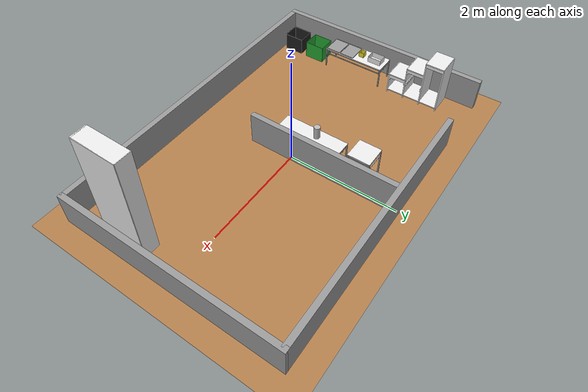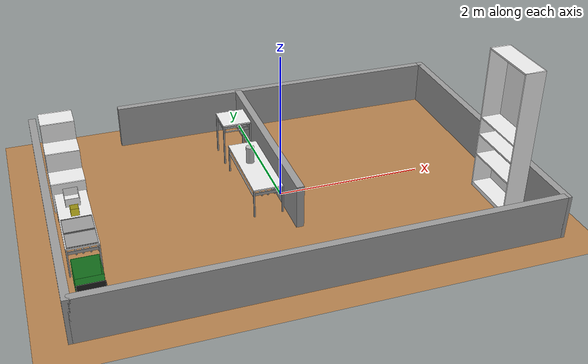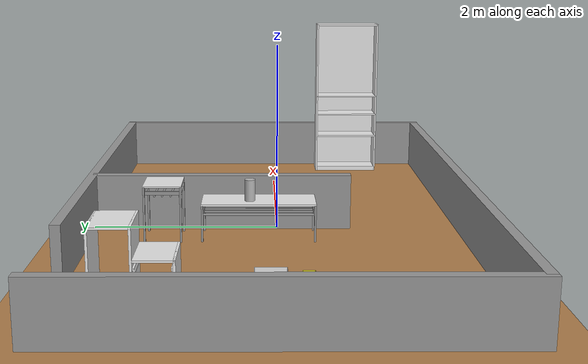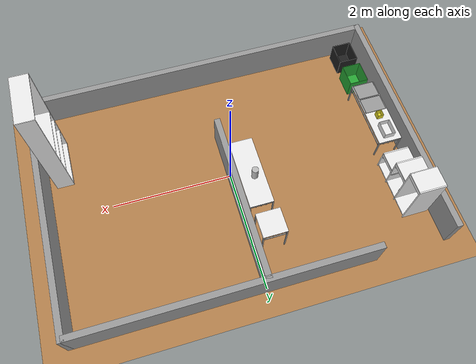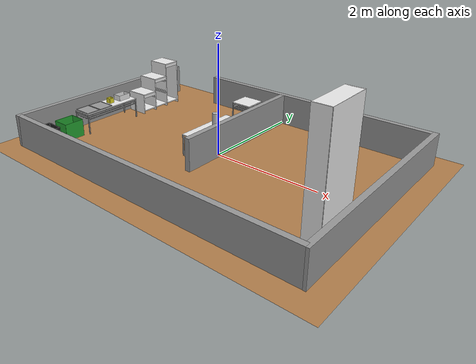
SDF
<sdf version="1.7">
 <world name="default">
  <light name="sun" type="directional">
   <pose>0 0 10 0 -0 0</pose>
   <diffuse>0.8 0.8 0.8 1</diffuse>
   <specular>0.2 0.2 0.2 1</specular>
   <attenuation>
    <range>1000</range>
    <constant>0.9</constant>
    <linear>0.01</linear>
    <quadratic>0.001</quadratic>
   </attenuation>
   <direction>-0.5 0.1 -0.9</direction>
   <spot><inner_angle>0</inner_angle><outer_angle>0</outer_angle><falloff>0</falloff></spot>
  </light>
  <gravity>0 0 -9.8</gravity>
  <physics type="ode">
   <max_step_size>0.001</max_step_size>
   <real_time_factor>1</real_time_factor>
   <real_time_update_rate>1000</real_time_update_rate>
  </physics>
  <scene><ambient>0.4 0.4 0.4 1</ambient><background>0.7 0.7 0.7 1</background><shadows>1</shadows></scene>
  <model name="wrc_ground_plane">
   <static>1</static>
   <link name="link">
    <collision name="collision">
     <geometry><plane><normal>0 0 1</normal><size>10 10</size></plane></geometry>
     <surface>
      <contact><collide_bitmask>65535</collide_bitmask></contact>
      <friction><ode><mu>100</mu><mu2>50</mu2></ode></friction>
     </surface>
    </collision>
    <visual name="visual">
     <cast_shadows>0</cast_shadows>
     <geometry><plane><normal>0 0 1</normal><size>10 10</size></plane></geometry>
     <material>
      <script><uri>model://wrc_ground_plane/materials/wood.material</uri><name>WRS/WoodFloor</name></script>
     </material>
    </visual>
   </link>
  </model>
  <model name="wrc_frame">
   <static>1</static>
   <link name="link">
    <inertial><mass>1</mass></inertial>
    <collision name="wall_back">
     <pose>0.6 2 0.3 0 -0 0</pose>
     <geometry><box><size>4.8 0.1 0.6</size></box></geometry>
    </collision>
    <visual name="wall_back_v">
     <pose>0.6 2 0.3 0 -0 0</pose>
     <geometry><box><size>4.8 0.1 0.6</size></box></geometry>
     <material>
      <script><uri>file://media/materials/scripts/gazebo.material</uri><name>Gazebo/Gray</name></script>
     </material>
    </visual>
    <collision name="wall_front">
     <pose>0 -2 0.3 0 -0 0</pose>
     <geometry><box><size>6 0.1 0.6</size></box></geometry>
    </collision>
    <visual name="wall_front_v">
     <pose>0 -2 0.3 0 -0 0</pose>
     <geometry><box><size>6 0.1 0.6</size></box></geometry>
     <material>
      <script><uri>file://media/materials/scripts/gazebo.material</uri><name>Gazebo/Gray</name></script>
     </material>
    </visual>
    <collision name="wall_left">
     <pose>-3 0 0.3 0 -0 0</pose>
     <geometry><box><size>0.1 4.1 0.6</size></box></geometry>
    </collision>
    <visual name="wall_left_v">
     <pose>-3 0 0.3 0 -0 0</pose>
     <geometry><box><size>0.1 4.1 0.6</size></box></geometry>
     <material>
      <script><uri>file://media/materials/scripts/gazebo.material</uri><name>Gazebo/Gray</name></script>
     </material>
    </visual>
    <collision name="wall_right">
     <pose>3 0 0.3 0 -0 0</pose>
     <geometry><box><size>0.1 4.1 0.6</size></box></geometry>
    </collision>
    <visual name="wall_right_v">
     <pose>3 0 0.3 0 -0 0</pose>
     <geometry><box><size>0.1 4.1 0.6</size></box></geometry>
     <material>
      <script><uri>file://media/materials/scripts/gazebo.material</uri><name>Gazebo/Gray</name></script>
     </material>
    </visual>
    <collision name="wall_center">
     <pose>0 0.6 0.3 0 -0 0</pose>
     <geometry><box><size>0.1 2.8 0.6</size></box></geometry>
    </collision>
    <visual name="wall_center_v">
     <pose>0 0.6 0.3 0 -0 0</pose>
     <geometry><box><size>0.1 2.8 0.6</size></box></geometry>
     <material>
      <script><uri>file://media/materials/scripts/gazebo.material</uri><name>Gazebo/Gray</name></script>
     </material>
    </visual>
   </link>
  </model>
  <model name="wrc_bookshelf">
   <static>1</static>
   <link name="link">
    <inertial><mass>1</mass></inertial>
    <collision name="back">
     <pose>0 0.005 1.01 0 -0 0</pose>
     <geometry><box><size>0.8 0.01 2.02</size></box></geometry>
    </collision>
    <visual name="back_v">
     <pose>0 0.14 1.01 0 -0 0</pose>
     <geometry><box><size>0.8 0.01 2.02</size></box></geometry>
     <material>
      <script><uri>file://media/materials/scripts/gazebo.material</uri><name>Gazebo/White</name></script>
     </material>
    </visual>
    <collision name="left_side">
     <pose>0.4 0 1.01 0 -0 0</pose>
     <geometry><box><size>0.02 0.28 2.02</size></box></geometry>
    </collision>
    <visual name="left_side_v">
     <pose>0.4 0 1.01 0 -0 0</pose>
     <geometry><box><size>0.02 0.28 2.02</size></box></geometry>
     <material>
      <script><uri>file://media/materials/scripts/gazebo.material</uri><name>Gazebo/White</name></script>
     </material>
    </visual>
    <collision name="right_side">
     <pose>-0.4 0 1.01 0 -0 0</pose>
     <geometry><box><size>0.02 0.28 2.02</size></box></geometry>
    </collision>
    <visual name="right_side_v">
     <pose>-0.4 0 1.01 0 -0 0</pose>
     <geometry><box><size>0.02 0.28 2.02</size></box></geometry>
     <material>
      <script><uri>file://media/materials/scripts/gazebo.material</uri><name>Gazebo/White</name></script>
     </material>
    </visual>
    <collision name="bottom">
     <pose>0 0 0.03 0 -0 0</pose>
     <geometry><box><size>0.8 0.28 0.06</size></box></geometry>
    </collision>
    <visual name="bottom_v">
     <pose>0 0 0.03 0 -0 0</pose>
     <geometry><box><size>0.8 0.28 0.06</size></box></geometry>
     <material>
      <script><uri>file://media/materials/scripts/gazebo.material</uri><name>Gazebo/White</name></script>
     </material>
    </visual>
    <collision name="top">
     <pose>0 0 2.01 0 -0 0</pose>
     <geometry><box><size>0.8 0.28 0.02</size></box></geometry>
    </collision>
    <visual name="top_v">
     <pose>0 0 2.01 0 -0 0</pose>
     <geometry><box><size>0.8 0.28 0.02</size></box></geometry>
     <material>
      <script><uri>file://media/materials/scripts/gazebo.material</uri><name>Gazebo/White</name></script>
     </material>
    </visual>
    <collision name="slit1">
     <pose>0 0 0.49 0 -0 0</pose>
     <geometry><box><size>0.8 0.28 0.02</size></box></geometry>
    </collision>
    <visual name="slit1_v">
     <pose>0 0 0.49 0 -0 0</pose>
     <geometry><box><size>0.8 0.28 0.02</size></box></geometry>
     <material>
      <script><uri>file://media/materials/scripts/gazebo.material</uri><name>Gazebo/White</name></script>
     </material>
    </visual>
    <collision name="slit2">
     <pose>0 0 0.79 0 -0 0</pose>
     <geometry><box><size>0.8 0.28 0.02</size></box></geometry>
    </collision>
    <visual name="slit2_v">
     <pose>0 0 0.79 0 -0 0</pose>
     <geometry><box><size>0.8 0.28 0.02</size></box></geometry>
     <material>
      <script><uri>file://media/materials/scripts/gazebo.material</uri><name>Gazebo/White</name></script>
     </material>
    </visual>
    <collision name="slit3">
     <pose>0 0 1.04 0 -0 0</pose>
     <geometry><box><size>0.8 0.28 0.02</size></box></geometry>
    </collision>
    <visual name="slit3_v">
     <pose>0 0 1.04 0 -0 0</pose>
     <geometry><box><size>0.8 0.28 0.02</size></box></geometry>
     <material>
      <script><uri>file://media/materials/scripts/gazebo.material</uri><name>Gazebo/White</name></script>
     </material>
    </visual>
   </link>
   <pose>2.69998 -0.999774 0 0 0 -1.57</pose>
  </model>
  <model name="wrc_bin_black">
   <static>1</static>
   <link name="link">
    <inertial><mass>1</mass></inertial>
    <collision name="bottom">
     <pose>0 0 0.002 0 -0 0</pose>
     <geometry><box><size>0.33 0.38 0.004</size></box></geometry>
    </collision>
    <visual name="bottom_v">
     <pose>0 0 0.002 0 -0 0</pose>
     <geometry><box><size>0.33 0.38 0.004</size></box></geometry>
     <material>
      <script><uri>file://media/materials/scripts/gazebo.material</uri><name>Gazebo/Black</name></script>
     </material>
    </visual>
    <collision name="front">
     <pose>0 0.19 0.165 0 -0 0</pose>
     <geometry><box><size>0.33 0.004 0.33</size></box></geometry>
    </collision>
    <visual name="front_v">
     <pose>0 0.19 0.165 0 -0 0</pose>
     <geometry><box><size>0.33 0.004 0.33</size></box></geometry>
     <material>
      <script><uri>file://media/materials/scripts/gazebo.material</uri><name>Gazebo/Black</name></script>
     </material>
    </visual>
    <collision name="back">
     <pose>0 -0.19 0.165 0 -0 0</pose>
     <geometry><box><size>0.33 0.004 0.33</size></box></geometry>
    </collision>
    <visual name="back_v">
     <pose>0 -0.19 0.165 0 -0 0</pose>
     <geometry><box><size>0.33 0.004 0.33</size></box></geometry>
     <material>
      <script><uri>file://media/materials/scripts/gazebo.material</uri><name>Gazebo/Black</name></script>
     </material>
    </visual>
    <collision name="left">
     <pose>0.165 0 0.165 0 -0 0</pose>
     <geometry><box><size>0.004 0.38 0.33</size></box></geometry>
    </collision>
    <visual name="left_v">
     <pose>0.165 0 0.165 0 -0 0</pose>
     <geometry><box><size>0.004 0.38 0.33</size></box></geometry>
     <material>
      <script><uri>file://media/materials/scripts/gazebo.material</uri><name>Gazebo/Black</name></script>
     </material>
    </visual>
    <collision name="right">
     <pose>-0.165 0 0.165 0 -0 0</pose>
     <geometry><box><size>0.004 0.38 0.33</size></box></geometry>
    </collision>
    <visual name="right_v">
     <pose>-0.165 0 0.165 0 -0 0</pose>
     <geometry><box><size>0.004 0.38 0.33</size></box></geometry>
     <material>
      <script><uri>file://media/materials/scripts/gazebo.material</uri><name>Gazebo/Black</name></script>
     </material>
    </visual>
   </link>
   <pose>-2.7 -1.7 0 0 -0 0</pose>
  </model>
  <model name="wrc_bin_green">
   <static>1</static>
   <link name="link">
    <inertial><mass>1</mass></inertial>
    <collision name="bottom">
     <pose>0 0 0.002 0 -0 0</pose>
     <geometry><box><size>0.33 0.38 0.004</size></box></geometry>
    </collision>
    <visual name="bottom_v">
     <pose>0 0 0.002 0 -0 0</pose>
     <geometry><box><size>0.33 0.38 0.004</size></box></geometry>
     <material>
      <script><uri>file://media/materials/scripts/gazebo.material</uri><name>Gazebo/Green</name></script>
     </material>
    </visual>
    <collision name="front">
     <pose>0 0.19 0.165 0 -0 0</pose>
     <geometry><box><size>0.33 0.004 0.33</size></box></geometry>
    </collision>
    <visual name="front_v">
     <pose>0 0.19 0.165 0 -0 0</pose>
     <geometry><box><size>0.33 0.004 0.33</size></box></geometry>
     <material>
      <script><uri>file://media/materials/scripts/gazebo.material</uri><name>Gazebo/Green</name></script>
     </material>
    </visual>
    <collision name="back">
     <pose>0 -0.19 0.165 0 -0 0</pose>
     <geometry><box><size>0.33 0.004 0.33</size></box></geometry>
    </collision>
    <visual name="back_v">
     <pose>0 -0.19 0.165 0 -0 0</pose>
     <geometry><box><size>0.33 0.004 0.33</size></box></geometry>
     <material>
      <script><uri>file://media/materials/scripts/gazebo.material</uri><name>Gazebo/Green</name></script>
     </material>
    </visual>
    <collision name="left">
     <pose>0.165 0 0.165 0 -0 0</pose>
     <geometry><box><size>0.004 0.38 0.33</size></box></geometry>
    </collision>
    <visual name="left_v">
     <pose>0.165 0 0.165 0 -0 0</pose>
     <geometry><box><size>0.004 0.38 0.33</size></box></geometry>
     <material>
      <script><uri>file://media/materials/scripts/gazebo.material</uri><name>Gazebo/Green</name></script>
     </material>
    </visual>
    <collision name="right">
     <pose>-0.165 0 0.165 0 -0 0</pose>
     <geometry><box><size>0.004 0.38 0.33</size></box></geometry>
    </collision>
    <visual name="right_v">
     <pose>-0.165 0 0.165 0 -0 0</pose>
     <geometry><box><size>0.004 0.38 0.33</size></box></geometry>
     <material>
      <script><uri>file://media/materials/scripts/gazebo.material</uri><name>Gazebo/Green</name></script>
     </material>
    </visual>
   </link>
   <pose>-2.7 -1.2 0 0 -0 0</pose>
  </model>
  <model name="wrc_stair_like_drawer">
   <static>1</static>
   <link name="link">
    <inertial><mass>1</mass></inertial>
    <collision name="slit1">
     <pose>0 -0.495 0.21 0 -0 0</pose>
     <geometry><box><size>0.44 0.02 0.42</size></box></geometry>
    </collision>
    <visual name="slit1_v">
     <pose>0 -0.495 0.21 0 -0 0</pose>
     <geometry><box><size>0.44 0.02 0.42</size></box></geometry>
     <material>
      <script><uri>file://media/materials/scripts/gazebo.material</uri><name>Gazebo/White</name></script>
     </material>
    </visual>
    <collision name="holder_slit1_1_left_low">
     <pose>0 -0.48 0.3 0 -0 0</pose>
     <geometry><box><size>0.42 0.02 0.02</size></box></geometry>
    </collision>
    <visual name="holder_slit1_1_left_low_v">
     <pose>0 -0.48 0.3 0 -0 0</pose>
     <geometry><box><size>0.42 0.02 0.02</size></box></geometry>
     <material>
      <script><uri>file://media/materials/scripts/gazebo.material</uri><name>Gazebo/White</name></script>
     </material>
    </visual>
    <collision name="holder_slit1_1_left_high">
     <pose>0 -0.48 0.34 0 -0 0</pose>
     <geometry><box><size>0.42 0.02 0.02</size></box></geometry>
    </collision>
    <visual name="holder_slit1_1_left_high_v">
     <pose>0 -0.48 0.34 0 -0 0</pose>
     <geometry><box><size>0.42 0.02 0.02</size></box></geometry>
     <material>
      <script><uri>file://media/materials/scripts/gazebo.material</uri><name>Gazebo/White</name></script>
     </material>
    </visual>
    <collision name="holder_slit1_1_right_low">
     <pose>0 -0.18 0.3 0 -0 0</pose>
     <geometry><box><size>0.42 0.02 0.02</size></box></geometry>
    </collision>
    <visual name="holder_slit1_1_right_low_v">
     <pose>0 -0.18 0.3 0 -0 0</pose>
     <geometry><box><size>0.42 0.02 0.02</size></box></geometry>
     <material>
      <script><uri>file://media/materials/scripts/gazebo.material</uri><name>Gazebo/White</name></script>
     </material>
    </visual>
    <collision name="holder_slit1_1_right_high">
     <pose>0 -0.18 0.34 0 -0 0</pose>
     <geometry><box><size>0.42 0.02 0.02</size></box></geometry>
    </collision>
    <visual name="holder_slit1_1_right_high_v">
     <pose>0 -0.18 0.34 0 -0 0</pose>
     <geometry><box><size>0.42 0.02 0.02</size></box></geometry>
     <material>
      <script><uri>file://media/materials/scripts/gazebo.material</uri><name>Gazebo/White</name></script>
     </material>
    </visual>
    <collision name="slit2">
     <pose>0 -0.165 0.34 0 -0 0</pose>
     <geometry><box><size>0.44 0.02 0.68</size></box></geometry>
    </collision>
    <visual name="slit2_v">
     <pose>0 -0.165 0.34 0 -0 0</pose>
     <geometry><box><size>0.44 0.02 0.68</size></box></geometry>
     <material>
      <script><uri>file://media/materials/scripts/gazebo.material</uri><name>Gazebo/White</name></script>
     </material>
    </visual>
    <collision name="holder_slit2_1_left_low">
     <pose>0 -0.15 0.3 0 -0 0</pose>
     <geometry><box><size>0.42 0.02 0.02</size></box></geometry>
    </collision>
    <visual name="holder_slit2_1_left_low_v">
     <pose>0 -0.15 0.3 0 -0 0</pose>
     <geometry><box><size>0.42 0.02 0.02</size></box></geometry>
     <material>
      <script><uri>file://media/materials/scripts/gazebo.material</uri><name>Gazebo/White</name></script>
     </material>
    </visual>
    <collision name="holder_slit2_1_left_high">
     <pose>0 -0.15 0.34 0 -0 0</pose>
     <geometry><box><size>0.42 0.02 0.02</size></box></geometry>
    </collision>
    <visual name="holder_slit2_1_left_high_v">
     <pose>0 -0.15 0.34 0 -0 0</pose>
     <geometry><box><size>0.42 0.02 0.02</size></box></geometry>
     <material>
      <script><uri>file://media/materials/scripts/gazebo.material</uri><name>Gazebo/White</name></script>
     </material>
    </visual>
    <collision name="holder_slit2_1_right_low">
     <pose>0 0.15 0.3 0 -0 0</pose>
     <geometry><box><size>0.42 0.02 0.02</size></box></geometry>
    </collision>
    <visual name="holder_slit2_1_right_low_v">
     <pose>0 0.15 0.3 0 -0 0</pose>
     <geometry><box><size>0.42 0.02 0.02</size></box></geometry>
     <material>
      <script><uri>file://media/materials/scripts/gazebo.material</uri><name>Gazebo/White</name></script>
     </material>
    </visual>
    <collision name="holder_slit2_1_right_high">
     <pose>0 0.15 0.34 0 -0 0</pose>
     <geometry><box><size>0.42 0.02 0.02</size></box></geometry>
    </collision>
    <visual name="holder_slit2_1_right_high_v">
     <pose>0 0.15 0.34 0 -0 0</pose>
     <geometry><box><size>0.42 0.02 0.02</size></box></geometry>
     <material>
      <script><uri>file://media/materials/scripts/gazebo.material</uri><name>Gazebo/White</name></script>
     </material>
    </visual>
    <collision name="holder_slit2_2_left_low">
     <pose>0 -0.15 0.56 0 -0 0</pose>
     <geometry><box><size>0.42 0.02 0.02</size></box></geometry>
    </collision>
    <visual name="holder_slit2_2_left_low_v">
     <pose>0 -0.15 0.56 0 -0 0</pose>
     <geometry><box><size>0.42 0.02 0.02</size></box></geometry>
     <material>
      <script><uri>file://media/materials/scripts/gazebo.material</uri><name>Gazebo/White</name></script>
     </material>
    </visual>
    <collision name="holder_slit2_2_left_high">
     <pose>0 -0.15 0.6 0 -0 0</pose>
     <geometry><box><size>0.42 0.02 0.02</size></box></geometry>
    </collision>
    <visual name="holder_slit2_2_left_high_v">
     <pose>0 -0.15 0.6 0 -0 0</pose>
     <geometry><box><size>0.42 0.02 0.02</size></box></geometry>
     <material>
      <script><uri>file://media/materials/scripts/gazebo.material</uri><name>Gazebo/White</name></script>
     </material>
    </visual>
    <collision name="holder_slit2_2_right_low">
     <pose>0 0.15 0.56 0 -0 0</pose>
     <geometry><box><size>0.42 0.02 0.02</size></box></geometry>
    </collision>
    <visual name="holder_slit2_2_right_low_v">
     <pose>0 0.15 0.56 0 -0 0</pose>
     <geometry><box><size>0.42 0.02 0.02</size></box></geometry>
     <material>
      <script><uri>file://media/materials/scripts/gazebo.material</uri><name>Gazebo/White</name></script>
     </material>
    </visual>
    <collision name="holder_slit2_2_right_high">
     <pose>0 0.15 0.6 0 -0 0</pose>
     <geometry><box><size>0.42 0.02 0.02</size></box></geometry>
    </collision>
    <visual name="holder_slit2_2_right_high_v">
     <pose>0 0.15 0.6 0 -0 0</pose>
     <geometry><box><size>0.42 0.02 0.02</size></box></geometry>
     <material>
      <script><uri>file://media/materials/scripts/gazebo.material</uri><name>Gazebo/White</name></script>
     </material>
    </visual>
    <collision name="slit3">
     <pose>0 0.165 0.47 0 -0 0</pose>
     <geometry><box><size>0.44 0.02 0.94</size></box></geometry>
    </collision>
    <visual name="slit3_v">
     <pose>0 0.165 0.47 0 -0 0</pose>
     <geometry><box><size>0.44 0.02 0.94</size></box></geometry>
     <material>
      <script><uri>file://media/materials/scripts/gazebo.material</uri><name>Gazebo/White</name></script>
     </material>
    </visual>
    <collision name="slit4">
     <pose>0 0.495 0.47 0 -0 0</pose>
     <geometry><box><size>0.44 0.02 0.94</size></box></geometry>
    </collision>
    <visual name="slit4_v">
     <pose>0 0.495 0.47 0 -0 0</pose>
     <geometry><box><size>0.44 0.02 0.94</size></box></geometry>
     <material>
      <script><uri>file://media/materials/scripts/gazebo.material</uri><name>Gazebo/White</name></script>
     </material>
    </visual>
    <collision name="top1">
     <pose>0 -0.33 0.41 0 -0 0</pose>
     <geometry><box><size>0.44 0.33 0.02</size></box></geometry>
    </collision>
    <visual name="top1_v">
     <pose>0 -0.33 0.41 0 -0 0</pose>
     <geometry><box><size>0.44 0.33 0.02</size></box></geometry>
     <material>
      <script><uri>file://media/materials/scripts/gazebo.material</uri><name>Gazebo/White</name></script>
     </material>
    </visual>
    <collision name="top1_front">
     <pose>0.21 -0.33 0.37 0 -0 0</pose>
     <geometry><box><size>0.02 0.33 0.06</size></box></geometry>
    </collision>
    <visual name="top1_front_v">
     <pose>0.21 -0.33 0.37 0 -0 0</pose>
     <geometry><box><size>0.02 0.33 0.06</size></box></geometry>
     <material>
      <script><uri>file://media/materials/scripts/gazebo.material</uri><name>Gazebo/White</name></script>
     </material>
    </visual>
    <collision name="top2">
     <pose>0 0 0.67 0 -0 0</pose>
     <geometry><box><size>0.44 0.33 0.02</size></box></geometry>
    </collision>
    <visual name="top2_v">
     <pose>0 0 0.67 0 -0 0</pose>
     <geometry><box><size>0.44 0.33 0.02</size></box></geometry>
     <material>
      <script><uri>file://media/materials/scripts/gazebo.material</uri><name>Gazebo/White</name></script>
     </material>
    </visual>
    <collision name="top2_front">
     <pose>0.21 0 0.63 0 -0 0</pose>
     <geometry><box><size>0.02 0.33 0.06</size></box></geometry>
    </collision>
    <visual name="top2_front_v">
     <pose>0.21 0 0.63 0 -0 0</pose>
     <geometry><box><size>0.02 0.33 0.06</size></box></geometry>
     <material>
      <script><uri>file://media/materials/scripts/gazebo.material</uri><name>Gazebo/White</name></script>
     </material>
    </visual>
    <collision name="top3">
     <pose>0 0.33 0.93 0 -0 0</pose>
     <geometry><box><size>0.44 0.33 0.02</size></box></geometry>
    </collision>
    <visual name="top3_v">
     <pose>0 0.33 0.93 0 -0 0</pose>
     <geometry><box><size>0.44 0.33 0.02</size></box></geometry>
     <material>
      <script><uri>file://media/materials/scripts/gazebo.material</uri><name>Gazebo/White</name></script>
     </material>
    </visual>
    <collision name="top3_front">
     <pose>0.21 0.33 0.89 0 -0 0</pose>
     <geometry><box><size>0.02 0.33 0.06</size></box></geometry>
    </collision>
    <visual name="top3_front_v">
     <pose>0.21 0.33 0.89 0 -0 0</pose>
     <geometry><box><size>0.02 0.33 0.06</size></box></geometry>
     <material>
      <script><uri>file://media/materials/scripts/gazebo.material</uri><name>Gazebo/White</name></script>
     </material>
    </visual>
    <collision name="bottom">
     <pose>0 0 0.06 0 -0 0</pose>
     <geometry><box><size>0.44 0.99 0.02</size></box></geometry>
    </collision>
    <visual name="bottom_v">
     <pose>0 0 0.06 0 -0 0</pose>
     <geometry><box><size>0.44 0.99 0.02</size></box></geometry>
     <material>
      <script><uri>file://media/materials/scripts/gazebo.material</uri><name>Gazebo/White</name></script>
     </material>
    </visual>
   </link>
   <pose>-2.7 1 0 0 -0 0</pose>
  </model>
  <model name="wrc_tall_table">
   <static>1</static>
   <link name="link">
    <inertial><mass>1</mass></inertial>
    <collision name="top">
     <pose>0 0 0.59 0 -0 0</pose>
     <geometry><box><size>0.4 0.4 0.02</size></box></geometry>
    </collision>
    <visual name="top_v">
     <pose>0 0 0.59 0 -0 0</pose>
     <geometry><box><size>0.4 0.4 0.02</size></box></geometry>
     <material>
      <script><uri>file://media/materials/scripts/gazebo.material</uri><name>Gazebo/White</name></script>
     </material>
    </visual>
    <collision name="leg1">
     <pose>0.19 0.19 0.285 0 -0 0</pose>
     <geometry><box><size>0.02 0.02 0.6</size></box></geometry>
    </collision>
    <visual name="leg1_v">
     <pose>0.19 0.19 0.285 0 -0 0</pose>
     <geometry><box><size>0.02 0.02 0.6</size></box></geometry>
     <material>
      <script><uri>file://media/materials/scripts/gazebo.material</uri><name>Gazebo/Gray</name></script>
     </material>
    </visual>
    <collision name="leg2">
     <pose>-0.19 0.19 0.285 0 -0 0</pose>
     <geometry><box><size>0.02 0.02 0.6</size></box></geometry>
    </collision>
    <visual name="leg2_v">
     <pose>-0.19 0.19 0.285 0 -0 0</pose>
     <geometry><box><size>0.02 0.02 0.6</size></box></geometry>
     <material>
      <script><uri>file://media/materials/scripts/gazebo.material</uri><name>Gazebo/Gray</name></script>
     </material>
    </visual>
    <collision name="leg3">
     <pose>0.19 -0.19 0.285 0 -0 0</pose>
     <geometry><box><size>0.02 0.02 0.6</size></box></geometry>
    </collision>
    <visual name="leg3_v">
     <pose>0.19 -0.19 0.285 0 -0 0</pose>
     <geometry><box><size>0.02 0.02 0.6</size></box></geometry>
     <material>
      <script><uri>file://media/materials/scripts/gazebo.material</uri><name>Gazebo/Gray</name></script>
     </material>
    </visual>
    <collision name="leg4">
     <pose>-0.19 -0.19 0.285 0 -0 0</pose>
     <geometry><box><size>0.02 0.02 0.6</size></box></geometry>
    </collision>
    <visual name="leg4_v">
     <pose>-0.19 -0.19 0.285 0 -0 0</pose>
     <geometry><box><size>0.02 0.02 0.6</size></box></geometry>
     <material>
      <script><uri>file://media/materials/scripts/gazebo.material</uri><name>Gazebo/Gray</name></script>
     </material>
    </visual>
    <collision name="side_panel1">
     <pose>0.175 0 0.52 0 -0 0</pose>
     <geometry><box><size>0.01 0.4 0.04</size></box></geometry>
    </collision>
    <visual name="side_panel1_v">
     <pose>0.175 0 0.52 0 -0 0</pose>
     <geometry><box><size>0.01 0.4 0.04</size></box></geometry>
     <material>
      <script><uri>file://media/materials/scripts/gazebo.material</uri><name>Gazebo/Gray</name></script>
     </material>
    </visual>
    <collision name="side_panel2">
     <pose>-0.175 0 0.52 0 -0 0</pose>
     <geometry><box><size>0.01 0.4 0.04</size></box></geometry>
    </collision>
    <visual name="side_panel2_v">
     <pose>-0.175 0 0.52 0 -0 0</pose>
     <geometry><box><size>0.01 0.4 0.04</size></box></geometry>
     <material>
      <script><uri>file://media/materials/scripts/gazebo.material</uri><name>Gazebo/Gray</name></script>
     </material>
    </visual>
    <collision name="bar1">
     <pose>0 0.2 0.49 0 1.57 0</pose>
     <geometry><cylinder><radius>0.01</radius><length>0.36</length></cylinder></geometry>
    </collision>
    <visual name="bar1_v">
     <pose>0 0.19 0.49 0 1.57 0</pose>
     <geometry><cylinder><radius>0.01</radius><length>0.36</length></cylinder></geometry>
     <material>
      <script><uri>file://media/materials/scripts/gazebo.material</uri><name>Gazebo/Gray</name></script>
     </material>
    </visual>
    <collision name="bar2">
     <pose>0 0.08 0.49 0 1.57 0</pose>
     <geometry><cylinder><radius>0.01</radius><length>0.36</length></cylinder></geometry>
    </collision>
    <visual name="bar2_v">
     <pose>0 0.08 0.49 0 1.57 0</pose>
     <geometry><cylinder><radius>0.01</radius><length>0.36</length></cylinder></geometry>
     <material>
      <script><uri>file://media/materials/scripts/gazebo.material</uri><name>Gazebo/Gray</name></script>
     </material>
    </visual>
    <collision name="bar3">
     <pose>0 0 0.49 0 1.57 0</pose>
     <geometry><cylinder><radius>0.01</radius><length>0.36</length></cylinder></geometry>
    </collision>
    <visual name="bar3_v">
     <pose>0 0 0.49 0 1.57 0</pose>
     <geometry><cylinder><radius>0.01</radius><length>0.36</length></cylinder></geometry>
     <material>
      <script><uri>file://media/materials/scripts/gazebo.material</uri><name>Gazebo/Gray</name></script>
     </material>
    </visual>
    <collision name="bar4">
     <pose>0 -0.08 0.49 0 1.57 0</pose>
     <geometry><cylinder><radius>0.01</radius><length>0.36</length></cylinder></geometry>
    </collision>
    <visual name="bar4_v">
     <pose>0 -0.09 0.49 0 1.57 0</pose>
     <geometry><cylinder><radius>0.01</radius><length>0.36</length></cylinder></geometry>
     <material>
      <script><uri>file://media/materials/scripts/gazebo.material</uri><name>Gazebo/Gray</name></script>
     </material>
    </visual>
    <collision name="bar5">
     <pose>0 -0.18 0.49 0 1.57 0</pose>
     <geometry><cylinder><radius>0.01</radius><length>0.36</length></cylinder></geometry>
    </collision>
    <visual name="bar5_v">
     <pose>0 -0.18 0.49 0 1.57 0</pose>
     <geometry><cylinder><radius>0.01</radius><length>0.36</length></cylinder></geometry>
     <material>
      <script><uri>file://media/materials/scripts/gazebo.material</uri><name>Gazebo/Gray</name></script>
     </material>
    </visual>
   </link>
   <pose>-0.3 1.2 0 0 -0 0</pose>
  </model>
  <model name="wrc_long_table">
   <static>1</static>
   <link name="link">
    <inertial><mass>1</mass></inertial>
    <collision name="top">
     <pose>0 0 0.39 0 -0 0</pose>
     <geometry><box><size>1.2 0.4 0.02</size></box></geometry>
    </collision>
    <visual name="top_v">
     <pose>0 0 0.39 0 -0 0</pose>
     <geometry><box><size>1.2 0.4 0.02</size></box></geometry>
     <material>
      <script><uri>file://media/materials/scripts/gazebo.material</uri><name>Gazebo/White</name></script>
     </material>
    </visual>
    <collision name="leg1">
     <pose>0.59 0.19 0.185 0 -0 0</pose>
     <geometry><box><size>0.02 0.02 0.4</size></box></geometry>
    </collision>
    <visual name="leg1_v">
     <pose>0.59 0.19 0.185 0 -0 0</pose>
     <geometry><box><size>0.02 0.02 0.4</size></box></geometry>
     <material>
      <script><uri>file://media/materials/scripts/gazebo.material</uri><name>Gazebo/Gray</name></script>
     </material>
    </visual>
    <collision name="leg2">
     <pose>-0.59 0.19 0.185 0 -0 0</pose>
     <geometry><box><size>0.02 0.02 0.4</size></box></geometry>
    </collision>
    <visual name="leg2_v">
     <pose>-0.59 0.19 0.185 0 -0 0</pose>
     <geometry><box><size>0.02 0.02 0.4</size></box></geometry>
     <material>
      <script><uri>file://media/materials/scripts/gazebo.material</uri><name>Gazebo/Gray</name></script>
     </material>
    </visual>
    <collision name="leg3">
     <pose>0.59 -0.19 0.185 0 -0 0</pose>
     <geometry><box><size>0.02 0.02 0.4</size></box></geometry>
    </collision>
    <visual name="leg3_v">
     <pose>0.59 -0.19 0.185 0 -0 0</pose>
     <geometry><box><size>0.02 0.02 0.4</size></box></geometry>
     <material>
      <script><uri>file://media/materials/scripts/gazebo.material</uri><name>Gazebo/Gray</name></script>
     </material>
    </visual>
    <collision name="leg4">
     <pose>-0.59 -0.19 0.185 0 -0 0</pose>
     <geometry><box><size>0.02 0.02 0.4</size></box></geometry>
    </collision>
    <visual name="leg4_v">
     <pose>-0.59 -0.19 0.185 0 -0 0</pose>
     <geometry><box><size>0.02 0.02 0.4</size></box></geometry>
     <material>
      <script><uri>file://media/materials/scripts/gazebo.material</uri><name>Gazebo/Gray</name></script>
     </material>
    </visual>
    <collision name="side_panel1">
     <pose>0.575 0 0.32 0 -0 0</pose>
     <geometry><box><size>0.01 0.4 0.04</size></box></geometry>
    </collision>
    <visual name="side_panel1_v">
     <pose>0.575 0 0.32 0 -0 0</pose>
     <geometry><box><size>0.01 0.4 0.04</size></box></geometry>
     <material>
      <script><uri>file://media/materials/scripts/gazebo.material</uri><name>Gazebo/Gray</name></script>
     </material>
    </visual>
    <collision name="side_panel2">
     <pose>-0.575 0 0.32 0 -0 0</pose>
     <geometry><box><size>0.01 0.4 0.04</size></box></geometry>
    </collision>
    <visual name="side_panel2_v">
     <pose>-0.575 0 0.32 0 -0 0</pose>
     <geometry><box><size>0.01 0.4 0.04</size></box></geometry>
     <material>
      <script><uri>file://media/materials/scripts/gazebo.material</uri><name>Gazebo/Gray</name></script>
     </material>
    </visual>
    <collision name="bar1">
     <pose>0 0.2 0.29 0 1.57 0</pose>
     <geometry><cylinder><radius>0.01</radius><length>1.16</length></cylinder></geometry>
    </collision>
    <visual name="bar1_v">
     <pose>0 0.19 0.29 0 1.57 0</pose>
     <geometry><cylinder><radius>0.01</radius><length>1.16</length></cylinder></geometry>
     <material>
      <script><uri>file://media/materials/scripts/gazebo.material</uri><name>Gazebo/Gray</name></script>
     </material>
    </visual>
    <collision name="bar2">
     <pose>0 0.08 0.29 0 1.57 0</pose>
     <geometry><cylinder><radius>0.01</radius><length>1.16</length></cylinder></geometry>
    </collision>
    <visual name="bar2_v">
     <pose>0 0.08 0.29 0 1.57 0</pose>
     <geometry><cylinder><radius>0.01</radius><length>1.16</length></cylinder></geometry>
     <material>
      <script><uri>file://media/materials/scripts/gazebo.material</uri><name>Gazebo/Gray</name></script>
     </material>
    </visual>
    <collision name="bar3">
     <pose>0 0 0.29 0 1.57 0</pose>
     <geometry><cylinder><radius>0.01</radius><length>1.16</length></cylinder></geometry>
    </collision>
    <visual name="bar3_v">
     <pose>0 0 0.29 0 1.57 0</pose>
     <geometry><cylinder><radius>0.01</radius><length>1.16</length></cylinder></geometry>
     <material>
      <script><uri>file://media/materials/scripts/gazebo.material</uri><name>Gazebo/Gray</name></script>
     </material>
    </visual>
    <collision name="bar4">
     <pose>0 -0.08 0.29 0 1.57 0</pose>
     <geometry><cylinder><radius>0.01</radius><length>1.16</length></cylinder></geometry>
    </collision>
    <visual name="bar4_v">
     <pose>0 -0.09 0.29 0 1.57 0</pose>
     <geometry><cylinder><radius>0.01</radius><length>1.16</length></cylinder></geometry>
     <material>
      <script><uri>file://media/materials/scripts/gazebo.material</uri><name>Gazebo/Gray</name></script>
     </material>
    </visual>
    <collision name="bar5">
     <pose>0 -0.18 0.29 0 1.57 0</pose>
     <geometry><cylinder><radius>0.01</radius><length>1.16</length></cylinder></geometry>
    </collision>
    <visual name="bar5_v">
     <pose>0 -0.18 0.29 0 1.57 0</pose>
     <geometry><cylinder><radius>0.01</radius><length>1.16</length></cylinder></geometry>
     <material>
      <script><uri>file://media/materials/scripts/gazebo.material</uri><name>Gazebo/Gray</name></script>
     </material>
    </visual>
   </link>
   <pose>-0.289405 0.198908 0 0 -0 1.57</pose>
  </model>
  <model name="wrc_long_table_0">
   <static>1</static>
   <link name="link">
    <inertial><mass>1</mass></inertial>
    <collision name="top">
     <pose>0 0 0.39 0 -0 0</pose>
     <geometry><box><size>1.2 0.4 0.02</size></box></geometry>
    </collision>
    <visual name="top_v">
     <pose>0 0 0.39 0 -0 0</pose>
     <geometry><box><size>1.2 0.4 0.02</size></box></geometry>
     <material>
      <script><uri>file://media/materials/scripts/gazebo.material</uri><name>Gazebo/White</name></script>
     </material>
    </visual>
    <collision name="leg1">
     <pose>0.59 0.19 0.185 0 -0 0</pose>
     <geometry><box><size>0.02 0.02 0.4</size></box></geometry>
    </collision>
    <visual name="leg1_v">
     <pose>0.59 0.19 0.185 0 -0 0</pose>
     <geometry><box><size>0.02 0.02 0.4</size></box></geometry>
     <material>
      <script><uri>file://media/materials/scripts/gazebo.material</uri><name>Gazebo/Gray</name></script>
     </material>
    </visual>
    <collision name="leg2">
     <pose>-0.59 0.19 0.185 0 -0 0</pose>
     <geometry><box><size>0.02 0.02 0.4</size></box></geometry>
    </collision>
    <visual name="leg2_v">
     <pose>-0.59 0.19 0.185 0 -0 0</pose>
     <geometry><box><size>0.02 0.02 0.4</size></box></geometry>
     <material>
      <script><uri>file://media/materials/scripts/gazebo.material</uri><name>Gazebo/Gray</name></script>
     </material>
    </visual>
    <collision name="leg3">
     <pose>0.59 -0.19 0.185 0 -0 0</pose>
     <geometry><box><size>0.02 0.02 0.4</size></box></geometry>
    </collision>
    <visual name="leg3_v">
     <pose>0.59 -0.19 0.185 0 -0 0</pose>
     <geometry><box><size>0.02 0.02 0.4</size></box></geometry>
     <material>
      <script><uri>file://media/materials/scripts/gazebo.material</uri><name>Gazebo/Gray</name></script>
     </material>
    </visual>
    <collision name="leg4">
     <pose>-0.59 -0.19 0.185 0 -0 0</pose>
     <geometry><box><size>0.02 0.02 0.4</size></box></geometry>
    </collision>
    <visual name="leg4_v">
     <pose>-0.59 -0.19 0.185 0 -0 0</pose>
     <geometry><box><size>0.02 0.02 0.4</size></box></geometry>
     <material>
      <script><uri>file://media/materials/scripts/gazebo.material</uri><name>Gazebo/Gray</name></script>
     </material>
    </visual>
    <collision name="side_panel1">
     <pose>0.575 0 0.32 0 -0 0</pose>
     <geometry><box><size>0.01 0.4 0.04</size></box></geometry>
    </collision>
    <visual name="side_panel1_v">
     <pose>0.575 0 0.32 0 -0 0</pose>
     <geometry><box><size>0.01 0.4 0.04</size></box></geometry>
     <material>
      <script><uri>file://media/materials/scripts/gazebo.material</uri><name>Gazebo/Gray</name></script>
     </material>
    </visual>
    <collision name="side_panel2">
     <pose>-0.575 0 0.32 0 -0 0</pose>
     <geometry><box><size>0.01 0.4 0.04</size></box></geometry>
    </collision>
    <visual name="side_panel2_v">
     <pose>-0.575 0 0.32 0 -0 0</pose>
     <geometry><box><size>0.01 0.4 0.04</size></box></geometry>
     <material>
      <script><uri>file://media/materials/scripts/gazebo.material</uri><name>Gazebo/Gray</name></script>
     </material>
    </visual>
    <collision name="bar1">
     <pose>0 0.2 0.29 0 1.57 0</pose>
     <geometry><cylinder><radius>0.01</radius><length>1.16</length></cylinder></geometry>
    </collision>
    <visual name="bar1_v">
     <pose>0 0.19 0.29 0 1.57 0</pose>
     <geometry><cylinder><radius>0.01</radius><length>1.16</length></cylinder></geometry>
     <material>
      <script><uri>file://media/materials/scripts/gazebo.material</uri><name>Gazebo/Gray</name></script>
     </material>
    </visual>
    <collision name="bar2">
     <pose>0 0.08 0.29 0 1.57 0</pose>
     <geometry><cylinder><radius>0.01</radius><length>1.16</length></cylinder></geometry>
    </collision>
    <visual name="bar2_v">
     <pose>0 0.08 0.29 0 1.57 0</pose>
     <geometry><cylinder><radius>0.01</radius><length>1.16</length></cylinder></geometry>
     <material>
      <script><uri>file://media/materials/scripts/gazebo.material</uri><name>Gazebo/Gray</name></script>
     </material>
    </visual>
    <collision name="bar3">
     <pose>0 0 0.29 0 1.57 0</pose>
     <geometry><cylinder><radius>0.01</radius><length>1.16</length></cylinder></geometry>
    </collision>
    <visual name="bar3_v">
     <pose>0 0 0.29 0 1.57 0</pose>
     <geometry><cylinder><radius>0.01</radius><length>1.16</length></cylinder></geometry>
     <material>
      <script><uri>file://media/materials/scripts/gazebo.material</uri><name>Gazebo/Gray</name></script>
     </material>
    </visual>
    <collision name="bar4">
     <pose>0 -0.08 0.29 0 1.57 0</pose>
     <geometry><cylinder><radius>0.01</radius><length>1.16</length></cylinder></geometry>
    </collision>
    <visual name="bar4_v">
     <pose>0 -0.09 0.29 0 1.57 0</pose>
     <geometry><cylinder><radius>0.01</radius><length>1.16</length></cylinder></geometry>
     <material>
      <script><uri>file://media/materials/scripts/gazebo.material</uri><name>Gazebo/Gray</name></script>
     </material>
    </visual>
    <collision name="bar5">
     <pose>0 -0.18 0.29 0 1.57 0</pose>
     <geometry><cylinder><radius>0.01</radius><length>1.16</length></cylinder></geometry>
    </collision>
    <visual name="bar5_v">
     <pose>0 -0.18 0.29 0 1.57 0</pose>
     <geometry><cylinder><radius>0.01</radius><length>1.16</length></cylinder></geometry>
     <material>
      <script><uri>file://media/materials/scripts/gazebo.material</uri><name>Gazebo/Gray</name></script>
     </material>
    </visual>
   </link>
   <pose>-2.7 -0.3 0 0 -0 1.57</pose>
  </model>
  <model name="wrc_tray_1">
   <static>1</static>
   <link name="link">
    <inertial><mass>1</mass></inertial>
    <collision name="bottom">
     <pose>0 0 0.002 0 -0 0</pose>
     <geometry><box><size>0.36 0.38 0.004</size></box></geometry>
    </collision>
    <visual name="bottom_v">
     <pose>0 0 0.002 0 -0 0</pose>
     <geometry><box><size>0.285 0.37 0.004</size></box></geometry>
     <material>
      <script><uri>file://media/materials/scripts/gazebo.material</uri><name>Gazebo/Gray</name></script>
     </material>
    </visual>
    <collision name="front">
     <pose>0 0.185 0.01 0 -0 0</pose>
     <geometry><box><size>0.285 0.004 0.01</size></box></geometry>
    </collision>
    <visual name="front_v">
     <pose>0 0.185 0.01 0 -0 0</pose>
     <geometry><box><size>0.285 0.004 0.01</size></box></geometry>
     <material>
      <script><uri>file://media/materials/scripts/gazebo.material</uri><name>Gazebo/Gray</name></script>
     </material>
    </visual>
    <collision name="back">
     <pose>0 -0.185 0.01 0 -0 0</pose>
     <geometry><box><size>0.285 0.004 0.01</size></box></geometry>
    </collision>
    <visual name="back_v">
     <pose>0 -0.185 0.01 0 -0 0</pose>
     <geometry><box><size>0.285 0.004 0.01</size></box></geometry>
     <material>
      <script><uri>file://media/materials/scripts/gazebo.material</uri><name>Gazebo/Gray</name></script>
     </material>
    </visual>
    <collision name="left">
     <pose>0.1425 0 0.01 0 -0 0</pose>
     <geometry><box><size>0.004 0.37 0.01</size></box></geometry>
    </collision>
    <visual name="left_v">
     <pose>0.1425 0 0.01 0 -0 0</pose>
     <geometry><box><size>0.004 0.37 0.01</size></box></geometry>
     <material>
      <script><uri>file://media/materials/scripts/gazebo.material</uri><name>Gazebo/Gray</name></script>
     </material>
    </visual>
    <collision name="right">
     <pose>-0.1425 0 0.01 0 -0 0</pose>
     <geometry><box><size>0.004 0.37 0.01</size></box></geometry>
    </collision>
    <visual name="right_v">
     <pose>-0.1425 0 0.01 0 -0 0</pose>
     <geometry><box><size>0.004 0.37 0.01</size></box></geometry>
     <material>
      <script><uri>file://media/materials/scripts/gazebo.material</uri><name>Gazebo/Gray</name></script>
     </material>
    </visual>
   </link>
   <pose>-2.7 -0.75 0.4 0 -0 1.57</pose>
  </model>
  <model name="wrc_tray_2">
   <static>1</static>
   <link name="link">
    <inertial><mass>1</mass></inertial>
    <collision name="bottom">
     <pose>0 0 0.002 0 -0 0</pose>
     <geometry><box><size>0.36 0.38 0.004</size></box></geometry>
    </collision>
    <visual name="bottom_v">
     <pose>0 0 0.002 0 -0 0</pose>
     <geometry><box><size>0.285 0.37 0.004</size></box></geometry>
     <material>
      <script><uri>file://media/materials/scripts/gazebo.material</uri><name>Gazebo/Gray</name></script>
     </material>
    </visual>
    <collision name="front">
     <pose>0 0.185 0.01 0 -0 0</pose>
     <geometry><box><size>0.285 0.004 0.01</size></box></geometry>
    </collision>
    <visual name="front_v">
     <pose>0 0.185 0.01 0 -0 0</pose>
     <geometry><box><size>0.285 0.004 0.01</size></box></geometry>
     <material>
      <script><uri>file://media/materials/scripts/gazebo.material</uri><name>Gazebo/Gray</name></script>
     </material>
    </visual>
    <collision name="back">
     <pose>0 -0.185 0.01 0 -0 0</pose>
     <geometry><box><size>0.285 0.004 0.01</size></box></geometry>
    </collision>
    <visual name="back_v">
     <pose>0 -0.185 0.01 0 -0 0</pose>
     <geometry><box><size>0.285 0.004 0.01</size></box></geometry>
     <material>
      <script><uri>file://media/materials/scripts/gazebo.material</uri><name>Gazebo/Gray</name></script>
     </material>
    </visual>
    <collision name="left">
     <pose>0.1425 0 0.01 0 -0 0</pose>
     <geometry><box><size>0.004 0.37 0.01</size></box></geometry>
    </collision>
    <visual name="left_v">
     <pose>0.1425 0 0.01 0 -0 0</pose>
     <geometry><box><size>0.004 0.37 0.01</size></box></geometry>
     <material>
      <script><uri>file://media/materials/scripts/gazebo.material</uri><name>Gazebo/Gray</name></script>
     </material>
    </visual>
    <collision name="right">
     <pose>-0.1425 0 0.01 0 -0 0</pose>
     <geometry><box><size>0.004 0.37 0.01</size></box></geometry>
    </collision>
    <visual name="right_v">
     <pose>-0.1425 0 0.01 0 -0 0</pose>
     <geometry><box><size>0.004 0.37 0.01</size></box></geometry>
     <material>
      <script><uri>file://media/materials/scripts/gazebo.material</uri><name>Gazebo/Gray</name></script>
     </material>
    </visual>
   </link>
   <pose>-2.7 -0.45 0.4 0 -0 1.57</pose>
  </model>
  <model name="wrc_container_a">
   <static>1</static>
   <link name="link">
    <inertial><mass>1</mass></inertial>
    <collision name="bottom">
     <pose>0 0 0.002 0 -0 0</pose>
     <geometry><box><size>0.1 0.1 0.004</size></box></geometry>
    </collision>
    <visual name="bottom_v">
     <pose>0 0 0.002 0 -0 0</pose>
     <geometry><box><size>0.1 0.1 0.004</size></box></geometry>
     <material>
      <script><uri>file://media/materials/scripts/gazebo.material</uri><name>Gazebo/Yellow</name></script>
     </material>
    </visual>
    <collision name="front">
     <pose>0 0.05 0.05 0 -0 0</pose>
     <geometry><box><size>0.1 0.004 0.1</size></box></geometry>
    </collision>
    <visual name="front_v">
     <pose>0 0.05 0.05 0 -0 0</pose>
     <geometry><box><size>0.1 0.004 0.1</size></box></geometry>
     <material>
      <script><uri>file://media/materials/scripts/gazebo.material</uri><name>Gazebo/Yellow</name></script>
     </material>
    </visual>
    <collision name="back">
     <pose>0 -0.05 0.05 0 -0 0</pose>
     <geometry><box><size>0.1 0.004 0.1</size></box></geometry>
    </collision>
    <visual name="back_v">
     <pose>0 -0.05 0.05 0 -0 0</pose>
     <geometry><box><size>0.1 0.004 0.1</size></box></geometry>
     <material>
      <script><uri>file://media/materials/scripts/gazebo.material</uri><name>Gazebo/Yellow</name></script>
     </material>
    </visual>
    <collision name="left">
     <pose>0.05 0 0.05 0 -0 0</pose>
     <geometry><box><size>0.004 0.1 0.1</size></box></geometry>
    </collision>
    <visual name="left_v">
     <pose>0.05 0 0.05 0 -0 0</pose>
     <geometry><box><size>0.004 0.1 0.1</size></box></geometry>
     <material>
      <script><uri>file://media/materials/scripts/gazebo.material</uri><name>Gazebo/Yellow</name></script>
     </material>
    </visual>
    <collision name="right">
     <pose>-0.05 0 0.05 0 -0 0</pose>
     <geometry><box><size>0.004 0.1 0.1</size></box></geometry>
    </collision>
    <visual name="right_v">
     <pose>-0.05 0 0.05 0 -0 0</pose>
     <geometry><box><size>0.004 0.1 0.1</size></box></geometry>
     <material>
      <script><uri>file://media/materials/scripts/gazebo.material</uri><name>Gazebo/Yellow</name></script>
     </material>
    </visual>
   </link>
   <pose>-2.7 -0.2 0.4 0 -0 0</pose>
  </model>
  <model name="wrc_container_b">
   <static>1</static>
   <link name="link">
    <inertial><mass>1</mass></inertial>
    <collision name="bottom">
     <pose>0 0 0.002 0 -0 0</pose>
     <geometry><box><size>0.18 0.26 0.004</size></box></geometry>
    </collision>
    <visual name="bottom_v">
     <pose>0 0 0.002 0 -0 0</pose>
     <geometry><box><size>0.18 0.26 0.004</size></box></geometry>
     <material>
      <script><uri>file://media/materials/scripts/gazebo.material</uri><name>Gazebo/White</name></script>
     </material>
    </visual>
    <collision name="front">
     <pose>0 0.13 0.055 0 -0 0</pose>
     <geometry><box><size>0.18 0.004 0.11</size></box></geometry>
    </collision>
    <visual name="front_v">
     <pose>0 0.13 0.055 0 -0 0</pose>
     <geometry><box><size>0.18 0.004 0.11</size></box></geometry>
     <material>
      <script><uri>file://media/materials/scripts/gazebo.material</uri><name>Gazebo/White</name></script>
     </material>
    </visual>
    <collision name="back">
     <pose>0 -0.13 0.055 0 -0 0</pose>
     <geometry><box><size>0.18 0.004 0.11</size></box></geometry>
    </collision>
    <visual name="back_v">
     <pose>0 -0.13 0.055 0 -0 0</pose>
     <geometry><box><size>0.18 0.004 0.11</size></box></geometry>
     <material>
      <script><uri>file://media/materials/scripts/gazebo.material</uri><name>Gazebo/White</name></script>
     </material>
    </visual>
    <collision name="left">
     <pose>0.09 0 0.055 0 -0 0</pose>
     <geometry><box><size>0.004 0.26 0.11</size></box></geometry>
    </collision>
    <visual name="left_v">
     <pose>0.09 0 0.055 0 -0 0</pose>
     <geometry><box><size>0.004 0.26 0.11</size></box></geometry>
     <material>
      <script><uri>file://media/materials/scripts/gazebo.material</uri><name>Gazebo/White</name></script>
     </material>
    </visual>
    <collision name="right">
     <pose>-0.09 0 0.055 0 -0 0</pose>
     <geometry><box><size>0.004 0.26 0.11</size></box></geometry>
    </collision>
    <visual name="right_v">
     <pose>-0.09 0 0.055 0 -0 0</pose>
     <geometry><box><size>0.004 0.26 0.11</size></box></geometry>
     <material>
      <script><uri>file://media/materials/scripts/gazebo.material</uri><name>Gazebo/White</name></script>
     </material>
    </visual>
   </link>
   <pose>-2.7 0.1 0.4 0 -0 0</pose>
  </model>
  <magnetic_field>6e-06 2.3e-05 -4.2e-05</magnetic_field>
  <atmosphere type="adiabatic"/>
  <spherical_coordinates>
   <surface_model>EARTH_WGS84</surface_model>
   <latitude_deg>0</latitude_deg>
   <longitude_deg>0</longitude_deg>
   <elevation>0</elevation>
   <heading_deg>0</heading_deg>
  </spherical_coordinates>
  <model name="beer">
   <link name="link">
    <pose>0 0 0.115 0 -0 0</pose>
    <inertial>
     <mass>0.39</mass>
     <inertia><ixx>0.00058</ixx><ixy>0</ixy><ixz>0</ixz><iyy>0.00058</iyy><iyz>0</iyz><izz>0.00019</izz></inertia>
    </inertial>
    <collision name="collision">
     <geometry><cylinder><radius>0.055</radius><length>0.23</length></cylinder></geometry>
    </collision>
    <visual name="visual">
     <geometry><cylinder><radius>0.055</radius><length>0.23</length></cylinder></geometry>
     <material>
      <script>
       <uri>model://beer/materials/scripts</uri>
       <uri>model://beer/materials/textures</uri>
       <name>Beer/Diffuse</name>
      </script>
     </material>
    </visual>
   </link>
   <pose>-0.324985 0.292082 0.39999 -2e-06 -8e-06 0.001579</pose>
  </model>
 </world>
</sdf>
